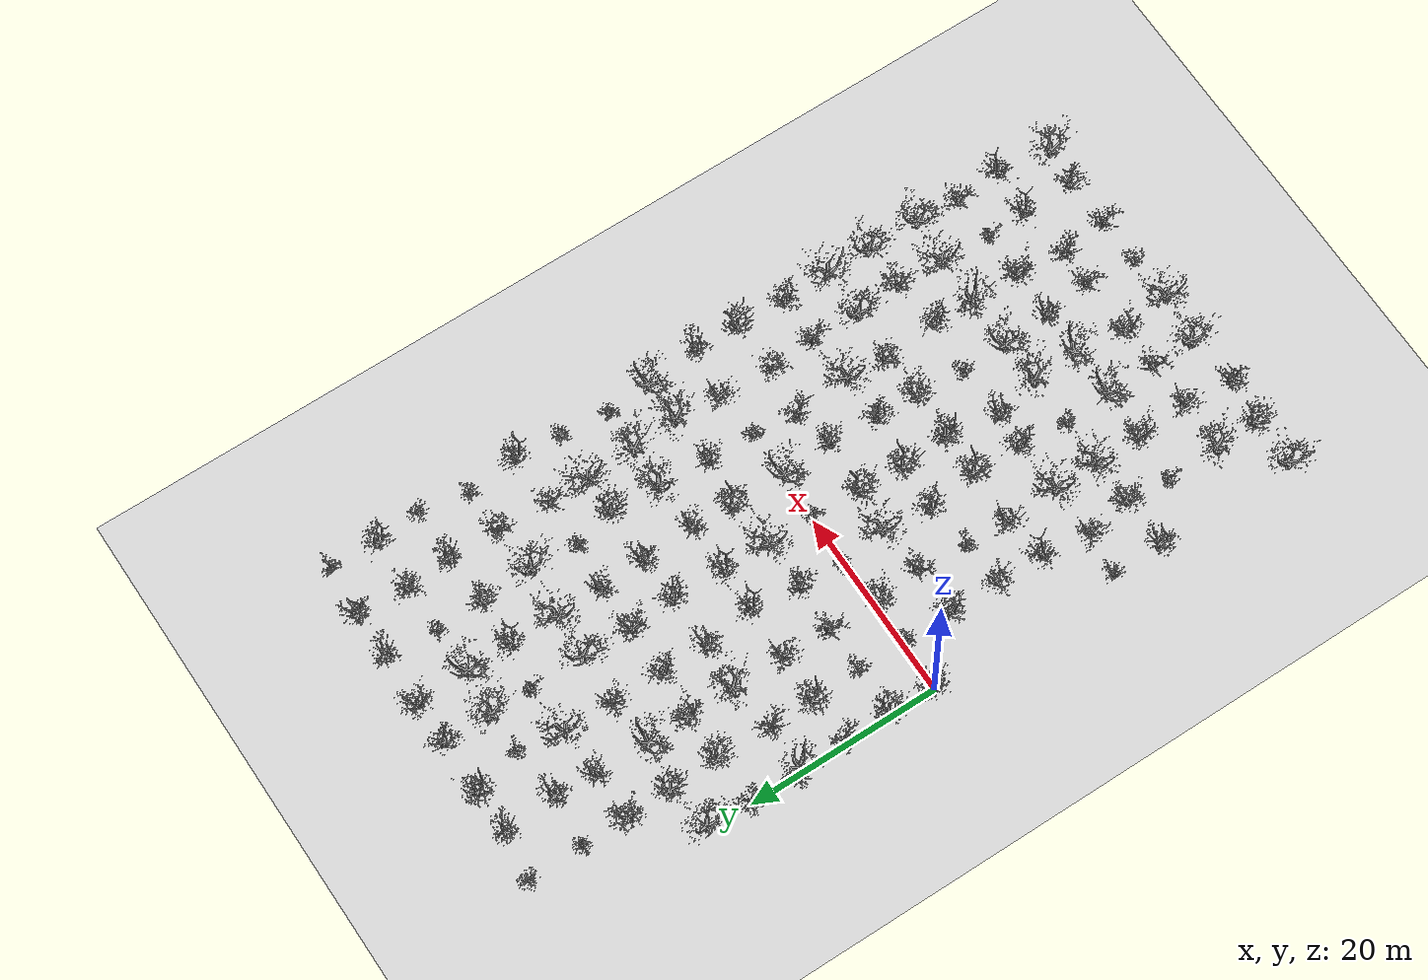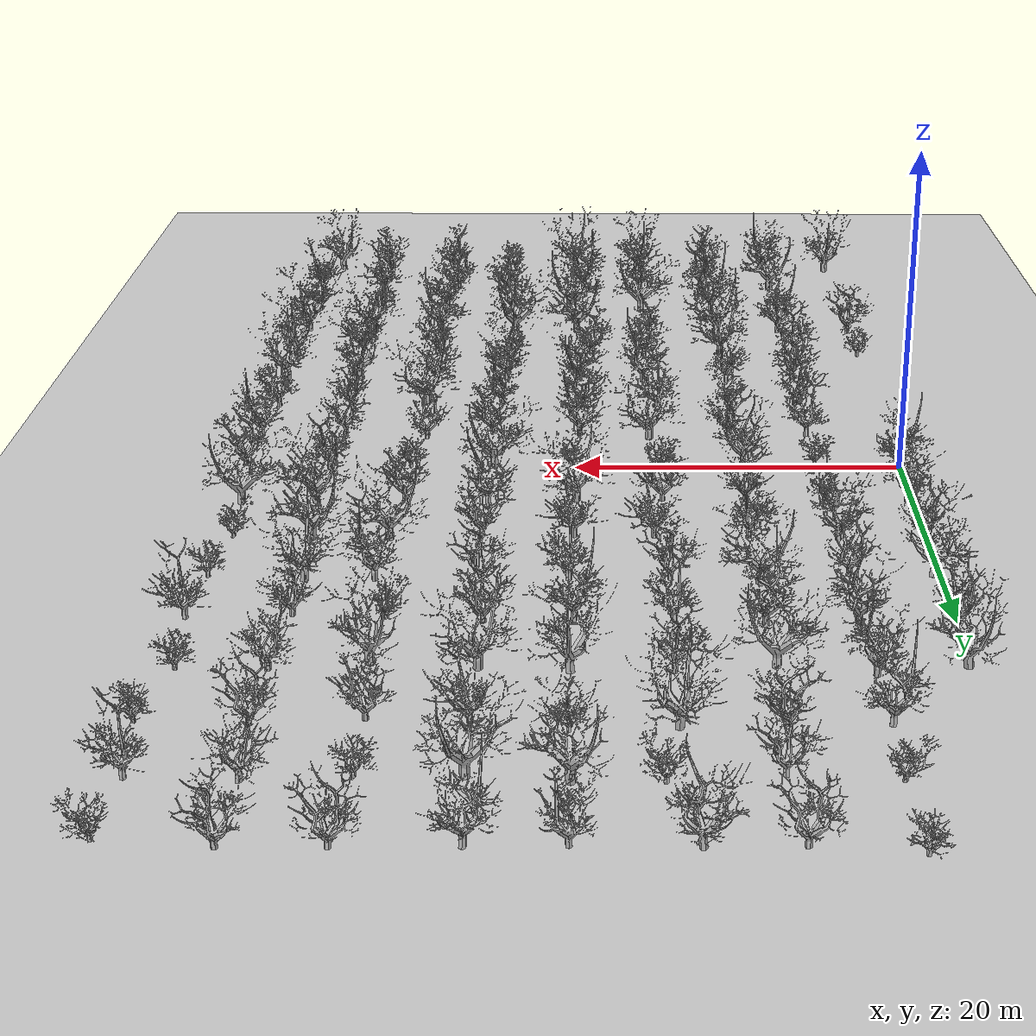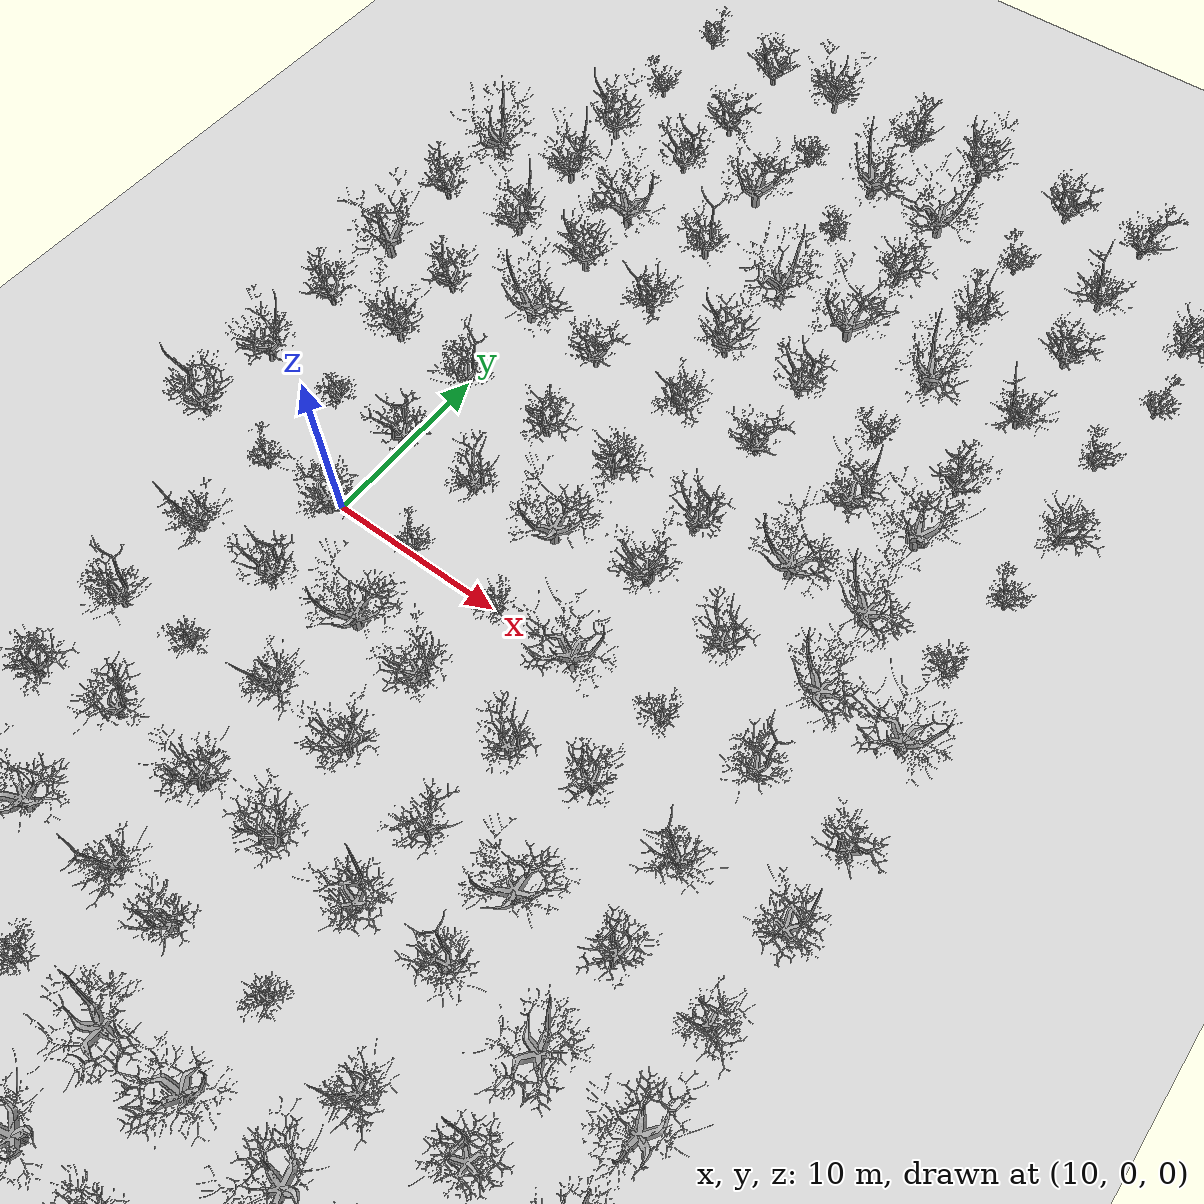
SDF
<sdf version="1.6">
 <world name="random_flat_forest">
  <include><uri>model://sun</uri></include>
  <model name="ground_plane">
   <static>true</static>
   <link name="link">
    <collision name="collision">
     <geometry><plane><normal>0 0 1</normal><size>100 100</size></plane></geometry>
    </collision>
    <visual name="visual">
     <geometry><plane><normal>0 0 1</normal><size>100 100</size></plane></geometry>
     <material>
      <script><uri>file://media/materials/scripts/gazebo.material</uri><name>Gazebo/Gray</name></script>
     </material>
    </visual>
   </link>
  </model>
  <include>
   <uri>model://random_tree_3</uri>
   <name>tree_136</name>
   <pose>0.10 -39.83 0 0 0 3.83</pose>
   <scale>1.12 1.01 1.11</scale>
  </include>
  <include>
   <uri>model://random_tree_1</uri>
   <name>tree_139</name>
   <pose>0.08 -25.19 0 0 0 1.40</pose>
   <scale>1.12 1.05 1.14</scale>
  </include>
  <include>
   <uri>model://random_tree_4</uri>
   <name>tree_140</name>
   <pose>-0.00 -19.96 0 0 0 4.37</pose>
   <scale>0.93 0.95 1.19</scale>
  </include>
  <include>
   <uri>model://random_tree_0</uri>
   <name>tree_144</name>
   <pose>0.04 0.21 0 0 0 4.17</pose>
   <scale>0.91 0.97 0.94</scale>
  </include>
  <include>
   <uri>model://random_tree_0</uri>
   <name>tree_145</name>
   <pose>0.27 4.89 0 0 0 1.74</pose>
   <scale>0.95 0.99 0.92</scale>
  </include>
  <include>
   <uri>model://random_tree_1</uri>
   <name>tree_146</name>
   <pose>0.19 9.86 0 0 0 6.23</pose>
   <scale>1.02 1.10 1.03</scale>
  </include>
  <include>
   <uri>model://random_tree_3</uri>
   <name>tree_147</name>
   <pose>0.35 14.56 0 0 0 1.36</pose>
   <scale>0.96 1.03 0.91</scale>
  </include>
  <include>
   <uri>model://random_tree_1</uri>
   <name>tree_148</name>
   <pose>-0.03 20.03 0 0 0 6.16</pose>
   <scale>1.14 1.07 0.97</scale>
  </include>
  <include>
   <uri>model://random_tree_3</uri>
   <name>tree_149</name>
   <pose>0.25 24.58 0 0 0 4.28</pose>
   <scale>1.07 1.05 1.08</scale>
  </include>
  <include>
   <uri>model://random_tree_0</uri>
   <name>tree_153</name>
   <pose>5.09 -39.67 0 0 0 1.35</pose>
   <scale>1.18 1.27 0.92</scale>
  </include>
  <include>
   <uri>model://random_tree_3</uri>
   <name>tree_154</name>
   <pose>4.99 -35.17 0 0 0 4.94</pose>
   <scale>1.12 1.13 0.96</scale>
  </include>
  <include>
   <uri>model://random_tree_4</uri>
   <name>tree_155</name>
   <pose>4.90 -29.57 0 0 0 2.31</pose>
   <scale>1.06 0.97 1.09</scale>
  </include>
  <include>
   <uri>model://random_tree_0</uri>
   <name>tree_156</name>
   <pose>5.27 -25.09 0 0 0 4.13</pose>
   <scale>1.09 1.03 1.07</scale>
  </include>
  <include>
   <uri>model://random_tree_2</uri>
   <name>tree_157</name>
   <pose>4.50 -20.48 0 0 0 5.53</pose>
   <scale>1.12 1.22 1.15</scale>
  </include>
  <include>
   <uri>model://random_tree_2</uri>
   <name>tree_158</name>
   <pose>5.11 -15.53 0 0 0 4.03</pose>
   <scale>1.09 1.04 1.00</scale>
  </include>
  <include>
   <uri>model://random_tree_2</uri>
   <name>tree_159</name>
   <pose>5.40 -10.53 0 0 0 6.12</pose>
   <scale>0.90 0.91 0.93</scale>
  </include>
  <include>
   <uri>model://random_tree_2</uri>
   <name>tree_160</name>
   <pose>5.22 -5.18 0 0 0 2.06</pose>
   <scale>0.93 0.99 1.19</scale>
  </include>
  <include>
   <uri>model://random_tree_4</uri>
   <name>tree_161</name>
   <pose>5.21 -0.41 0 0 0 0.08</pose>
   <scale>1.18 1.09 1.08</scale>
  </include>
  <include>
   <uri>model://random_tree_4</uri>
   <name>tree_162</name>
   <pose>5.19 4.83 0 0 0 4.17</pose>
   <scale>0.92 0.94 1.08</scale>
  </include>
  <include>
   <uri>model://random_tree_0</uri>
   <name>tree_163</name>
   <pose>4.99 10.14 0 0 0 6.20</pose>
   <scale>1.11 1.01 0.91</scale>
  </include>
  <include>
   <uri>model://random_tree_1</uri>
   <name>tree_164</name>
   <pose>4.97 14.56 0 0 0 6.19</pose>
   <scale>1.15 1.18 0.98</scale>
  </include>
  <include>
   <uri>model://random_tree_0</uri>
   <name>tree_165</name>
   <pose>5.16 20.25 0 0 0 2.08</pose>
   <scale>1.13 1.03 1.18</scale>
  </include>
  <include>
   <uri>model://random_tree_0</uri>
   <name>tree_166</name>
   <pose>4.94 25.45 0 0 0 1.79</pose>
   <scale>1.10 1.01 1.05</scale>
  </include>
  <include>
   <uri>model://random_tree_0</uri>
   <name>tree_167</name>
   <pose>4.84 30.07 0 0 0 4.55</pose>
   <scale>1.16 1.06 1.09</scale>
  </include>
  <include>
   <uri>model://random_tree_4</uri>
   <name>tree_168</name>
   <pose>5.00 34.80 0 0 0 0.72</pose>
   <scale>0.94 0.87 1.20</scale>
  </include>
  <include>
   <uri>model://random_tree_4</uri>
   <name>tree_169</name>
   <pose>4.86 40.37 0 0 0 5.45</pose>
   <scale>1.00 1.01 0.98</scale>
  </include>
  <include>
   <uri>model://random_tree_1</uri>
   <name>tree_170</name>
   <pose>9.64 -40.35 0 0 0 1.98</pose>
   <scale>1.07 1.14 0.91</scale>
  </include>
  <include>
   <uri>model://random_tree_2</uri>
   <name>tree_171</name>
   <pose>10.41 -35.41 0 0 0 5.11</pose>
   <scale>1.15 1.22 0.91</scale>
  </include>
  <include>
   <uri>model://random_tree_0</uri>
   <name>tree_172</name>
   <pose>9.93 -29.86 0 0 0 4.41</pose>
   <scale>1.16 1.11 0.96</scale>
  </include>
  <include>
   <uri>model://random_tree_3</uri>
   <name>tree_173</name>
   <pose>9.81 -24.77 0 0 0 5.98</pose>
   <scale>0.91 0.96 1.10</scale>
  </include>
  <include>
   <uri>model://random_tree_3</uri>
   <name>tree_174</name>
   <pose>9.83 -20.28 0 0 0 6.21</pose>
   <scale>1.07 1.07 0.99</scale>
  </include>
  <include>
   <uri>model://random_tree_2</uri>
   <name>tree_175</name>
   <pose>9.72 -14.76 0 0 0 5.08</pose>
   <scale>0.92 0.95 1.20</scale>
  </include>
  <include>
   <uri>model://random_tree_4</uri>
   <name>tree_176</name>
   <pose>9.72 -10.23 0 0 0 3.69</pose>
   <scale>1.03 1.08 1.07</scale>
  </include>
  <include>
   <uri>model://random_tree_1</uri>
   <name>tree_177</name>
   <pose>10.25 -5.21 0 0 0 4.75</pose>
   <scale>0.94 1.02 1.17</scale>
  </include>
  <include>
   <uri>model://random_tree_0</uri>
   <name>tree_178</name>
   <pose>9.68 -0.48 0 0 0 2.76</pose>
   <scale>1.19 1.07 1.13</scale>
  </include>
  <include>
   <uri>model://random_tree_1</uri>
   <name>tree_179</name>
   <pose>9.90 4.92 0 0 0 5.21</pose>
   <scale>0.97 1.04 0.95</scale>
  </include>
  <include>
   <uri>model://random_tree_2</uri>
   <name>tree_180</name>
   <pose>10.07 9.80 0 0 0 5.40</pose>
   <scale>1.07 1.10 0.92</scale>
  </include>
  <include>
   <uri>model://random_tree_3</uri>
   <name>tree_181</name>
   <pose>9.88 15.55 0 0 0 5.25</pose>
   <scale>0.95 0.99 1.01</scale>
  </include>
  <include>
   <uri>model://random_tree_0</uri>
   <name>tree_182</name>
   <pose>10.00 20.36 0 0 0 5.04</pose>
   <scale>1.05 1.03 1.01</scale>
  </include>
  <include>
   <uri>model://random_tree_3</uri>
   <name>tree_183</name>
   <pose>9.83 24.58 0 0 0 2.42</pose>
   <scale>1.13 1.03 1.20</scale>
  </include>
  <include>
   <uri>model://random_tree_1</uri>
   <name>tree_184</name>
   <pose>9.88 30.09 0 0 0 4.39</pose>
   <scale>1.18 1.18 1.17</scale>
  </include>
  <include>
   <uri>model://random_tree_1</uri>
   <name>tree_185</name>
   <pose>10.29 34.37 0 0 0 1.44</pose>
   <scale>1.18 1.28 0.92</scale>
  </include>
  <include>
   <uri>model://random_tree_1</uri>
   <name>tree_186</name>
   <pose>9.87 39.83 0 0 0 0.85</pose>
   <scale>0.91 0.84 1.02</scale>
  </include>
  <include>
   <uri>model://random_tree_3</uri>
   <name>tree_187</name>
   <pose>15.28 -39.59 0 0 0 4.12</pose>
   <scale>1.05 1.15 1.15</scale>
  </include>
  <include>
   <uri>model://random_tree_1</uri>
   <name>tree_188</name>
   <pose>15.21 -35.18 0 0 0 4.98</pose>
   <scale>1.08 1.09 1.12</scale>
  </include>
  <include>
   <uri>model://random_tree_3</uri>
   <name>tree_189</name>
   <pose>15.30 -29.97 0 0 0 2.50</pose>
   <scale>1.01 1.05 1.18</scale>
  </include>
  <include>
   <uri>model://random_tree_4</uri>
   <name>tree_190</name>
   <pose>14.85 -25.09 0 0 0 5.56</pose>
   <scale>1.18 1.26 1.15</scale>
  </include>
  <include>
   <uri>model://random_tree_2</uri>
   <name>tree_191</name>
   <pose>15.29 -19.91 0 0 0 2.03</pose>
   <scale>1.08 1.13 1.10</scale>
  </include>
  <include>
   <uri>model://random_tree_0</uri>
   <name>tree_192</name>
   <pose>15.50 -14.82 0 0 0 0.38</pose>
   <scale>1.00 1.01 0.99</scale>
  </include>
  <include>
   <uri>model://random_tree_2</uri>
   <name>tree_193</name>
   <pose>14.68 -9.48 0 0 0 2.59</pose>
   <scale>1.10 1.20 1.06</scale>
  </include>
  <include>
   <uri>model://random_tree_3</uri>
   <name>tree_194</name>
   <pose>15.36 -4.63 0 0 0 0.07</pose>
   <scale>1.04 1.09 0.93</scale>
  </include>
  <include>
   <uri>model://random_tree_4</uri>
   <name>tree_195</name>
   <pose>14.75 0.23 0 0 0 0.06</pose>
   <scale>0.96 1.01 1.15</scale>
  </include>
  <include>
   <uri>model://random_tree_1</uri>
   <name>tree_196</name>
   <pose>14.83 4.85 0 0 0 3.34</pose>
   <scale>1.20 1.25 1.05</scale>
  </include>
  <include>
   <uri>model://random_tree_2</uri>
   <name>tree_197</name>
   <pose>15.47 9.85 0 0 0 3.24</pose>
   <scale>0.98 1.00 0.95</scale>
  </include>
  <include>
   <uri>model://random_tree_1</uri>
   <name>tree_198</name>
   <pose>14.74 15.14 0 0 0 1.63</pose>
   <scale>1.16 1.15 1.13</scale>
  </include>
  <include>
   <uri>model://random_tree_2</uri>
   <name>tree_199</name>
   <pose>14.77 19.99 0 0 0 2.25</pose>
   <scale>1.04 1.08 0.96</scale>
  </include>
  <include>
   <uri>model://random_tree_2</uri>
   <name>tree_200</name>
   <pose>14.94 25.20 0 0 0 5.96</pose>
   <scale>0.94 0.93 0.92</scale>
  </include>
  <include>
   <uri>model://random_tree_3</uri>
   <name>tree_201</name>
   <pose>14.91 30.38 0 0 0 0.39</pose>
   <scale>0.93 1.00 0.97</scale>
  </include>
  <include>
   <uri>model://random_tree_4</uri>
   <name>tree_202</name>
   <pose>15.69 34.99 0 0 0 3.64</pose>
   <scale>0.93 0.84 1.15</scale>
  </include>
  <include>
   <uri>model://random_tree_0</uri>
   <name>tree_203</name>
   <pose>14.32 39.98 0 0 0 6.19</pose>
   <scale>1.17 1.10 0.90</scale>
  </include>
  <include>
   <uri>model://random_tree_3</uri>
   <name>tree_204</name>
   <pose>20.36 -40.40 0 0 0 0.21</pose>
   <scale>0.92 0.94 1.19</scale>
  </include>
  <include>
   <uri>model://random_tree_0</uri>
   <name>tree_205</name>
   <pose>19.68 -35.11 0 0 0 4.80</pose>
   <scale>1.14 1.23 0.95</scale>
  </include>
  <include>
   <uri>model://random_tree_3</uri>
   <name>tree_206</name>
   <pose>20.46 -29.80 0 0 0 2.06</pose>
   <scale>1.06 1.04 0.92</scale>
  </include>
  <include>
   <uri>model://random_tree_3</uri>
   <name>tree_207</name>
   <pose>20.10 -24.94 0 0 0 4.97</pose>
   <scale>1.18 1.15 1.04</scale>
  </include>
  <include>
   <uri>model://random_tree_1</uri>
   <name>tree_208</name>
   <pose>19.08 -20.24 0 0 0 1.23</pose>
   <scale>0.91 0.96 1.09</scale>
  </include>
  <include>
   <uri>model://random_tree_0</uri>
   <name>tree_209</name>
   <pose>20.01 -14.79 0 0 0 5.60</pose>
   <scale>1.07 1.10 1.19</scale>
  </include>
  <include>
   <uri>model://random_tree_0</uri>
   <name>tree_210</name>
   <pose>19.59 -9.78 0 0 0 0.72</pose>
   <scale>0.95 0.97 1.03</scale>
  </include>
  <include>
   <uri>model://random_tree_0</uri>
   <name>tree_211</name>
   <pose>19.78 -5.11 0 0 0 1.28</pose>
   <scale>1.16 1.06 1.02</scale>
  </include>
  <include>
   <uri>model://random_tree_4</uri>
   <name>tree_212</name>
   <pose>20.29 -0.01 0 0 0 1.73</pose>
   <scale>1.08 1.02 1.03</scale>
  </include>
  <include>
   <uri>model://random_tree_3</uri>
   <name>tree_213</name>
   <pose>19.95 4.91 0 0 0 0.12</pose>
   <scale>1.05 0.97 1.19</scale>
  </include>
  <include>
   <uri>model://random_tree_2</uri>
   <name>tree_214</name>
   <pose>20.01 9.82 0 0 0 3.37</pose>
   <scale>1.16 1.12 1.00</scale>
  </include>
  <include>
   <uri>model://random_tree_2</uri>
   <name>tree_215</name>
   <pose>20.29 15.21 0 0 0 2.53</pose>
   <scale>1.05 1.09 1.05</scale>
  </include>
  <include>
   <uri>model://random_tree_0</uri>
   <name>tree_216</name>
   <pose>19.99 19.90 0 0 0 4.39</pose>
   <scale>1.13 1.07 1.01</scale>
  </include>
  <include>
   <uri>model://random_tree_3</uri>
   <name>tree_217</name>
   <pose>20.11 25.16 0 0 0 3.78</pose>
   <scale>0.93 1.01 1.12</scale>
  </include>
  <include>
   <uri>model://random_tree_4</uri>
   <name>tree_218</name>
   <pose>20.13 30.74 0 0 0 2.42</pose>
   <scale>1.08 1.04 1.19</scale>
  </include>
  <include>
   <uri>model://random_tree_3</uri>
   <name>tree_219</name>
   <pose>19.99 35.02 0 0 0 4.67</pose>
   <scale>1.16 1.16 0.92</scale>
  </include>
  <include>
   <uri>model://random_tree_1</uri>
   <name>tree_220</name>
   <pose>20.02 39.88 0 0 0 2.78</pose>
   <scale>1.19 1.19 1.04</scale>
  </include>
  <include>
   <uri>model://random_tree_4</uri>
   <name>tree_221</name>
   <pose>25.20 -40.16 0 0 0 4.73</pose>
   <scale>1.13 1.04 1.20</scale>
  </include>
  <include>
   <uri>model://random_tree_1</uri>
   <name>tree_222</name>
   <pose>25.71 -34.90 0 0 0 5.41</pose>
   <scale>0.96 0.99 0.90</scale>
  </include>
  <include>
   <uri>model://random_tree_1</uri>
   <name>tree_223</name>
   <pose>25.10 -29.86 0 0 0 1.33</pose>
   <scale>1.17 1.15 1.05</scale>
  </include>
  <include>
   <uri>model://random_tree_3</uri>
   <name>tree_224</name>
   <pose>24.65 -24.75 0 0 0 3.07</pose>
   <scale>0.95 0.98 1.05</scale>
  </include>
  <include>
   <uri>model://random_tree_4</uri>
   <name>tree_225</name>
   <pose>24.52 -20.09 0 0 0 4.57</pose>
   <scale>1.19 1.10 1.15</scale>
  </include>
  <include>
   <uri>model://random_tree_0</uri>
   <name>tree_226</name>
   <pose>24.88 -14.92 0 0 0 2.78</pose>
   <scale>1.06 1.11 0.99</scale>
  </include>
  <include>
   <uri>model://random_tree_1</uri>
   <name>tree_227</name>
   <pose>25.05 -10.57 0 0 0 2.64</pose>
   <scale>1.12 1.23 1.13</scale>
  </include>
  <include>
   <uri>model://random_tree_1</uri>
   <name>tree_228</name>
   <pose>25.43 -5.40 0 0 0 3.63</pose>
   <scale>1.10 1.12 1.17</scale>
  </include>
  <include>
   <uri>model://random_tree_3</uri>
   <name>tree_229</name>
   <pose>25.06 -0.14 0 0 0 2.74</pose>
   <scale>1.18 1.19 1.01</scale>
  </include>
  <include>
   <uri>model://random_tree_0</uri>
   <name>tree_230</name>
   <pose>25.13 5.64 0 0 0 0.65</pose>
   <scale>0.90 0.82 0.96</scale>
  </include>
  <include>
   <uri>model://random_tree_1</uri>
   <name>tree_231</name>
   <pose>25.30 9.73 0 0 0 4.18</pose>
   <scale>0.91 0.99 1.15</scale>
  </include>
  <include>
   <uri>model://random_tree_1</uri>
   <name>tree_232</name>
   <pose>25.06 15.42 0 0 0 1.74</pose>
   <scale>1.12 1.07 1.15</scale>
  </include>
  <include>
   <uri>model://random_tree_1</uri>
   <name>tree_233</name>
   <pose>24.71 20.08 0 0 0 4.19</pose>
   <scale>1.12 1.08 1.06</scale>
  </include>
  <include>
   <uri>model://random_tree_3</uri>
   <name>tree_234</name>
   <pose>24.71 24.89 0 0 0 0.08</pose>
   <scale>0.93 0.87 0.93</scale>
  </include>
  <include>
   <uri>model://random_tree_2</uri>
   <name>tree_235</name>
   <pose>24.79 29.99 0 0 0 3.37</pose>
   <scale>1.00 1.04 1.10</scale>
  </include>
  <include>
   <uri>model://random_tree_3</uri>
   <name>tree_236</name>
   <pose>24.76 34.63 0 0 0 3.11</pose>
   <scale>0.95 0.90 1.08</scale>
  </include>
  <include>
   <uri>model://random_tree_0</uri>
   <name>tree_237</name>
   <pose>24.54 39.96 0 0 0 4.64</pose>
   <scale>1.07 1.05 0.96</scale>
  </include>
  <include>
   <uri>model://random_tree_1</uri>
   <name>tree_238</name>
   <pose>30.15 -40.01 0 0 0 5.64</pose>
   <scale>0.94 0.96 0.98</scale>
  </include>
  <include>
   <uri>model://random_tree_1</uri>
   <name>tree_239</name>
   <pose>29.50 -35.06 0 0 0 6.21</pose>
   <scale>1.05 0.99 0.92</scale>
  </include>
  <include>
   <uri>model://random_tree_0</uri>
   <name>tree_240</name>
   <pose>30.07 -30.07 0 0 0 4.43</pose>
   <scale>1.07 1.12 0.92</scale>
  </include>
  <include>
   <uri>model://random_tree_3</uri>
   <name>tree_241</name>
   <pose>30.22 -24.88 0 0 0 1.46</pose>
   <scale>1.15 1.12 1.18</scale>
  </include>
  <include>
   <uri>model://random_tree_2</uri>
   <name>tree_242</name>
   <pose>30.15 -20.53 0 0 0 2.39</pose>
   <scale>1.12 1.14 0.93</scale>
  </include>
  <include>
   <uri>model://random_tree_2</uri>
   <name>tree_243</name>
   <pose>29.77 -14.53 0 0 0 0.52</pose>
   <scale>1.07 1.15 1.12</scale>
  </include>
  <include>
   <uri>model://random_tree_3</uri>
   <name>tree_244</name>
   <pose>30.03 -10.52 0 0 0 0.03</pose>
   <scale>1.09 1.10 0.93</scale>
  </include>
  <include>
   <uri>model://random_tree_1</uri>
   <name>tree_245</name>
   <pose>29.60 -4.56 0 0 0 6.19</pose>
   <scale>1.02 1.00 1.02</scale>
  </include>
  <include>
   <uri>model://random_tree_4</uri>
   <name>tree_246</name>
   <pose>30.23 0.04 0 0 0 1.38</pose>
   <scale>1.17 1.11 1.14</scale>
  </include>
  <include>
   <uri>model://random_tree_1</uri>
   <name>tree_247</name>
   <pose>30.16 4.86 0 0 0 3.68</pose>
   <scale>0.91 0.93 1.05</scale>
  </include>
  <include>
   <uri>model://random_tree_3</uri>
   <name>tree_248</name>
   <pose>30.54 10.22 0 0 0 5.62</pose>
   <scale>0.94 0.89 0.92</scale>
  </include>
  <include>
   <uri>model://random_tree_0</uri>
   <name>tree_249</name>
   <pose>30.86 15.28 0 0 0 1.84</pose>
   <scale>0.97 1.01 1.18</scale>
  </include>
  <include>
   <uri>model://random_tree_4</uri>
   <name>tree_250</name>
   <pose>29.81 19.64 0 0 0 0.96</pose>
   <scale>1.14 1.13 1.18</scale>
  </include>
  <include>
   <uri>model://random_tree_3</uri>
   <name>tree_251</name>
   <pose>30.10 24.45 0 0 0 4.42</pose>
   <scale>1.13 1.15 1.17</scale>
  </include>
  <include>
   <uri>model://random_tree_1</uri>
   <name>tree_252</name>
   <pose>29.76 29.76 0 0 0 3.35</pose>
   <scale>0.95 0.96 1.11</scale>
  </include>
  <include>
   <uri>model://random_tree_4</uri>
   <name>tree_253</name>
   <pose>29.78 34.67 0 0 0 0.22</pose>
   <scale>0.95 0.94 1.07</scale>
  </include>
  <include>
   <uri>model://random_tree_1</uri>
   <name>tree_254</name>
   <pose>30.24 40.06 0 0 0 0.91</pose>
   <scale>0.90 0.99 1.11</scale>
  </include>
  <include>
   <uri>model://random_tree_1</uri>
   <name>tree_255</name>
   <pose>35.28 -39.80 0 0 0 2.53</pose>
   <scale>1.07 1.13 0.98</scale>
  </include>
  <include>
   <uri>model://random_tree_2</uri>
   <name>tree_256</name>
   <pose>35.19 -34.34 0 0 0 3.56</pose>
   <scale>0.91 0.85 1.10</scale>
  </include>
  <include>
   <uri>model://random_tree_4</uri>
   <name>tree_257</name>
   <pose>34.98 -30.07 0 0 0 2.37</pose>
   <scale>1.05 1.00 1.14</scale>
  </include>
  <include>
   <uri>model://random_tree_3</uri>
   <name>tree_258</name>
   <pose>35.16 -24.78 0 0 0 0.36</pose>
   <scale>0.96 1.04 1.11</scale>
  </include>
  <include>
   <uri>model://random_tree_0</uri>
   <name>tree_259</name>
   <pose>35.35 -19.89 0 0 0 3.47</pose>
   <scale>0.94 0.93 1.00</scale>
  </include>
  <include>
   <uri>model://random_tree_3</uri>
   <name>tree_260</name>
   <pose>35.03 -15.08 0 0 0 4.11</pose>
   <scale>0.91 0.93 0.92</scale>
  </include>
  <include>
   <uri>model://random_tree_1</uri>
   <name>tree_261</name>
   <pose>35.16 -10.01 0 0 0 5.72</pose>
   <scale>0.96 1.04 1.10</scale>
  </include>
  <include>
   <uri>model://random_tree_2</uri>
   <name>tree_262</name>
   <pose>34.90 -5.07 0 0 0 0.90</pose>
   <scale>0.91 0.86 1.19</scale>
  </include>
  <include>
   <uri>model://random_tree_2</uri>
   <name>tree_263</name>
   <pose>35.20 0.38 0 0 0 5.33</pose>
   <scale>1.06 1.12 1.12</scale>
  </include>
  <include>
   <uri>model://random_tree_3</uri>
   <name>tree_264</name>
   <pose>35.36 5.31 0 0 0 4.94</pose>
   <scale>0.98 0.97 1.12</scale>
  </include>
  <include>
   <uri>model://random_tree_3</uri>
   <name>tree_265</name>
   <pose>34.92 10.16 0 0 0 4.99</pose>
   <scale>1.01 1.06 0.94</scale>
  </include>
  <include>
   <uri>model://random_tree_3</uri>
   <name>tree_266</name>
   <pose>34.70 15.35 0 0 0 0.60</pose>
   <scale>1.12 1.05 1.10</scale>
  </include>
  <include>
   <uri>model://random_tree_1</uri>
   <name>tree_267</name>
   <pose>34.76 19.40 0 0 0 5.46</pose>
   <scale>1.16 1.19 0.91</scale>
  </include>
  <include>
   <uri>model://random_tree_2</uri>
   <name>tree_268</name>
   <pose>35.15 25.10 0 0 0 1.15</pose>
   <scale>1.11 1.05 0.90</scale>
  </include>
  <include>
   <uri>model://random_tree_1</uri>
   <name>tree_269</name>
   <pose>35.24 30.24 0 0 0 0.94</pose>
   <scale>1.11 1.18 1.15</scale>
  </include>
  <include>
   <uri>model://random_tree_2</uri>
   <name>tree_270</name>
   <pose>34.88 35.05 0 0 0 0.60</pose>
   <scale>1.18 1.15 0.92</scale>
  </include>
  <include>
   <uri>model://random_tree_1</uri>
   <name>tree_271</name>
   <pose>35.03 40.11 0 0 0 2.10</pose>
   <scale>1.17 1.17 0.98</scale>
  </include>
  <include>
   <uri>model://random_tree_3</uri>
   <name>tree_272</name>
   <pose>39.25 -40.26 0 0 0 4.48</pose>
   <scale>1.03 0.97 1.12</scale>
  </include>
  <include>
   <uri>model://random_tree_2</uri>
   <name>tree_273</name>
   <pose>40.15 -34.82 0 0 0 4.18</pose>
   <scale>0.99 0.91 1.11</scale>
  </include>
  <include>
   <uri>model://random_tree_1</uri>
   <name>tree_274</name>
   <pose>39.75 -29.86 0 0 0 5.27</pose>
   <scale>1.17 1.06 0.93</scale>
  </include>
  <include>
   <uri>model://random_tree_3</uri>
   <name>tree_275</name>
   <pose>39.99 -25.25 0 0 0 3.67</pose>
   <scale>1.10 1.14 0.91</scale>
  </include>
  <include>
   <uri>model://random_tree_3</uri>
   <name>tree_276</name>
   <pose>40.10 -19.65 0 0 0 3.87</pose>
   <scale>0.94 0.97 1.08</scale>
  </include>
  <include>
   <uri>model://random_tree_3</uri>
   <name>tree_277</name>
   <pose>40.16 -15.16 0 0 0 0.71</pose>
   <scale>1.09 1.20 1.16</scale>
  </include>
  <include>
   <uri>model://random_tree_2</uri>
   <name>tree_278</name>
   <pose>39.91 -9.98 0 0 0 2.40</pose>
   <scale>0.97 1.05 1.17</scale>
  </include>
  <include>
   <uri>model://random_tree_0</uri>
   <name>tree_279</name>
   <pose>40.24 -4.85 0 0 0 1.77</pose>
   <scale>1.19 1.14 1.02</scale>
  </include>
  <include>
   <uri>model://random_tree_1</uri>
   <name>tree_280</name>
   <pose>40.52 -0.26 0 0 0 1.00</pose>
   <scale>1.09 1.00 0.98</scale>
  </include>
  <include>
   <uri>model://random_tree_3</uri>
   <name>tree_281</name>
   <pose>39.82 5.40 0 0 0 2.61</pose>
   <scale>1.08 1.01 0.97</scale>
  </include>
  <include>
   <uri>model://random_tree_4</uri>
   <name>tree_282</name>
   <pose>39.51 10.02 0 0 0 1.34</pose>
   <scale>1.13 1.22 1.19</scale>
  </include>
  <include>
   <uri>model://random_tree_4</uri>
   <name>tree_283</name>
   <pose>40.01 14.98 0 0 0 0.12</pose>
   <scale>1.10 1.14 1.04</scale>
  </include>
  <include>
   <uri>model://random_tree_2</uri>
   <name>tree_284</name>
   <pose>40.31 19.77 0 0 0 3.03</pose>
   <scale>1.00 1.01 1.03</scale>
  </include>
  <include>
   <uri>model://random_tree_4</uri>
   <name>tree_285</name>
   <pose>39.77 25.08 0 0 0 0.20</pose>
   <scale>1.07 1.11 1.19</scale>
  </include>
  <include>
   <uri>model://random_tree_4</uri>
   <name>tree_286</name>
   <pose>40.72 30.04 0 0 0 5.50</pose>
   <scale>1.16 1.16 1.20</scale>
  </include>
  <include>
   <uri>model://random_tree_2</uri>
   <name>tree_287</name>
   <pose>40.12 34.84 0 0 0 2.83</pose>
   <scale>0.95 0.88 1.07</scale>
  </include>
  <include>
   <uri>model://random_tree_4</uri>
   <name>tree_288</name>
   <pose>40.42 39.61 0 0 0 4.26</pose>
   <scale>0.97 0.94 0.93</scale>
  </include>
 </world>
</sdf>
